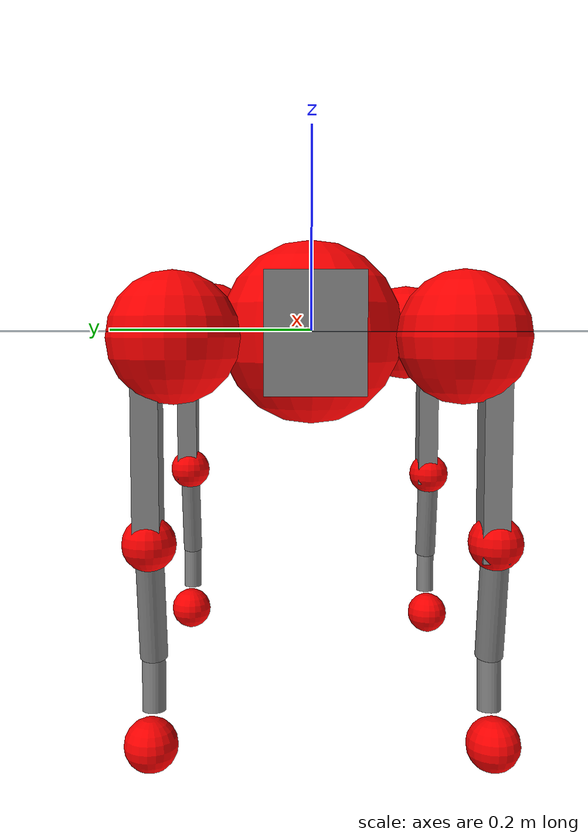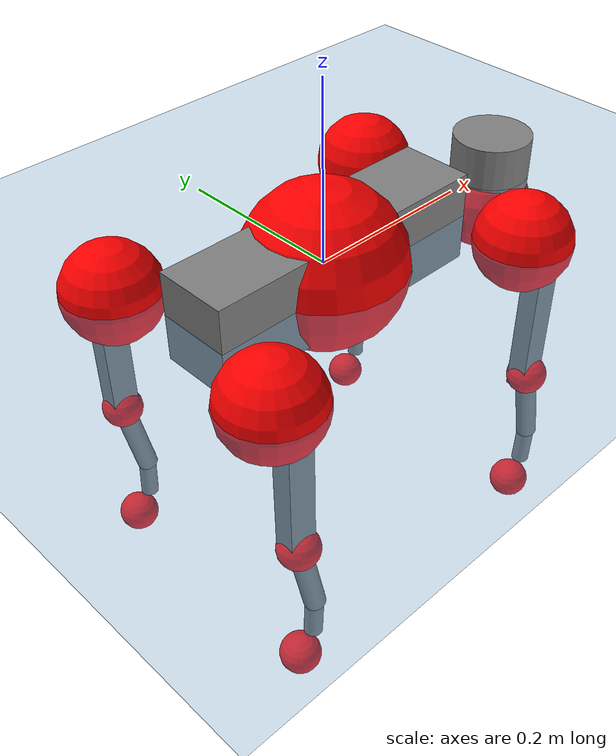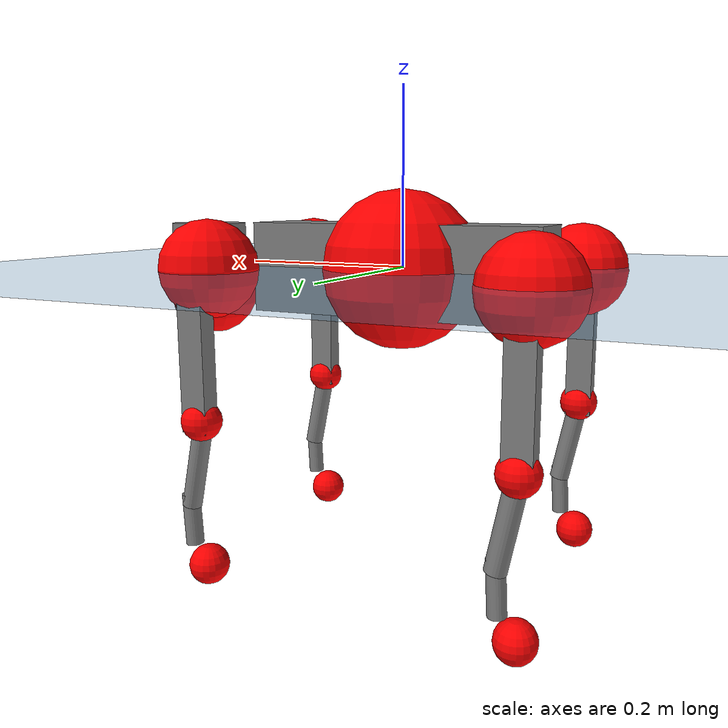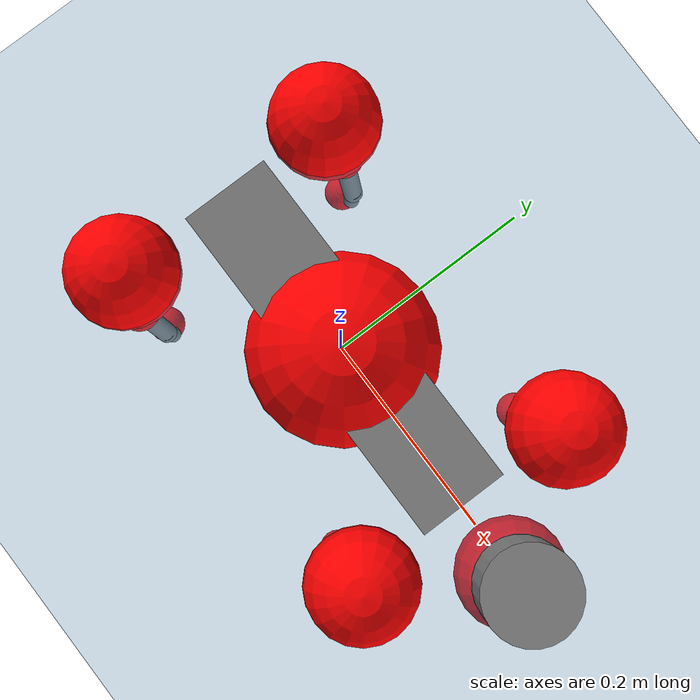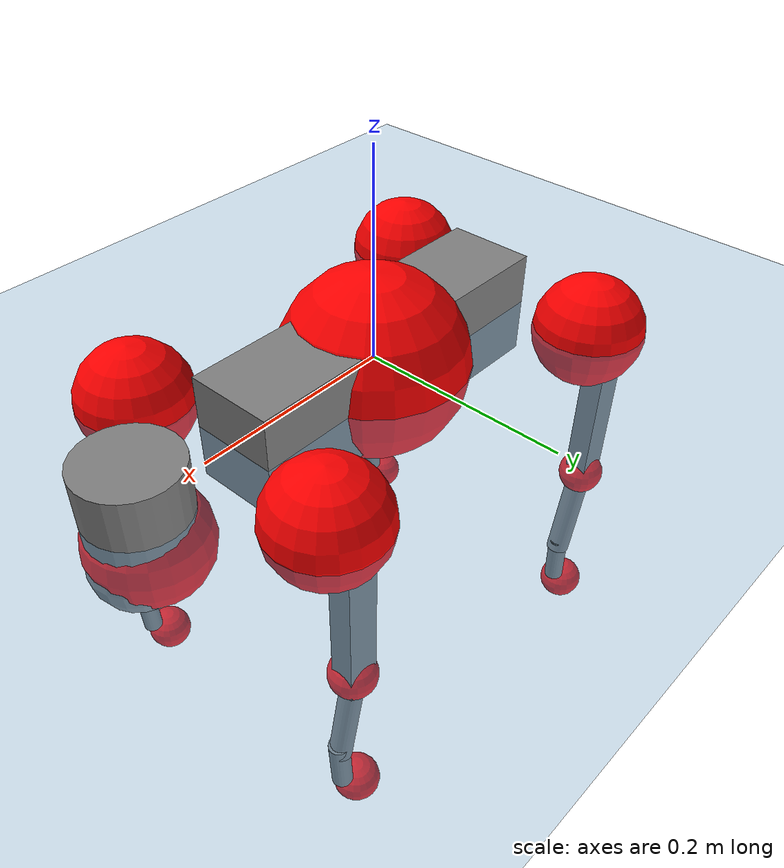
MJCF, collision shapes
<mujoco model="go2">
  <compiler angle="radian" assetdir="assets" balanceinertia="true" inertiafromgeom="false"/>

  <option timestep="0.005" density="1.2" viscosity="2e-05"/>

  <size nkey="1"/>

  <visual>
    <quality shadowsize="8192"/>
    <map shadowclip="0.5"/>
  </visual>

  <default>
    <default class="/">
      <geom contype="0" conaffinity="0" group="1" solref="-1000 -80"/>
      <site size="0.01 0.005 0.005" group="5"/>
      <general forcelimited="true" biastype="affine" gainprm="20" biasprm="0 -20 -0.5"/>
      <default class="go2">
        <joint armature="0.01" damping="0.01" frictionloss="0.2"/>
        <geom condim="1" margin="0.001"/>
        <default class="visual">
          <geom type="mesh" group="2"/>
        </default>
        <default class="collision">
          <geom group="3"/>
          <default class="foot">
            <geom size="0.022 0 0" condim="6" priority="1" friction="0.8 0.02 0.01" solimp="0.015 1 0.022"/>
          </default>
        </default>
        <default class="reward_collision_sphere">
          <geom group="5" rgba="1 0 0 1"/>
        </default>
      </default>
    </default>
  </default>

  <asset>
    <texture type="skybox" colorspace="auto" name="//unnamed_texture_0" builtin="gradient" rgb1="0.95 0.95 0.95" rgb2="0.95 0.95 0.95" width="100" height="600"/>
    <texture type="2d" colorspace="auto" name="texplane" builtin="checker" rgb1="0.345 0.575 0.748" rgb2="0.345 0.575 0.748" markrgb="1 1 1" width="512" height="512"/>
    <material name="MatPlane" class="/" texture="texplane" texuniform="true" texrepeat="2 2" specular="0.9"/>
    <material name="metal" class="/" rgba="0.9 0.95 0.95 1"/>
    <material name="black" class="/" rgba="0 0 0 1"/>
    <material name="white" class="/"/>
    <material name="gray" class="/" rgba="0.671705 0.692426 0.77427 1"/>
    <mesh name="base_0" class="/" file="base_0.obj"/>
    <mesh name="base_1" class="/" file="base_1.obj"/>
    <mesh name="base_2" class="/" file="base_2.obj"/>
    <mesh name="base_3" class="/" file="base_3.obj"/>
    <mesh name="base_4" class="/" file="base_4.obj"/>
    <mesh name="hip_0" class="/" file="hip_0.obj"/>
    <mesh name="hip_1" class="/" file="hip_1.obj"/>
    <mesh name="thigh_0" class="/" file="thigh_0.obj"/>
    <mesh name="thigh_1" class="/" file="thigh_1.obj"/>
    <mesh name="thigh_mirror_0" class="/" file="thigh_mirror_0.obj"/>
    <mesh name="thigh_mirror_1" class="/" file="thigh_mirror_1.obj"/>
    <mesh name="calf_0" class="/" file="calf_0.obj"/>
    <mesh name="calf_1" class="/" file="calf_1.obj"/>
    <mesh name="calf_mirror_0" class="/" file="calf_mirror_0.obj"/>
    <mesh name="calf_mirror_1" class="/" file="calf_mirror_1.obj"/>
    <mesh name="foot" class="/" file="foot.obj"/>
  </asset>

  <worldbody>
    <geom name="floor" class="/" size="100 100 0.125" type="plane" group="0" material="MatPlane"/>
    <light name="toplight_shadow" class="/" pos="0 0 5" dir="0.0990148 0.0990148 -0.990148" type="directional" ambient="0.04 0.04 0.04" diffuse="0.55 0.55 0.55" specular="0.12 0.12 0.12"/>
    <light name="toplight_fill" class="/" pos="0 0 5" dir="0.0990148 0.0990148 -0.990148" type="directional" castshadow="false" ambient="0.04 0.04 0.04" diffuse="0.3 0.3 0.3" specular="0.08 0.08 0.08"/>
    <body name="trunk" childclass="go2" pos="0.00152631 0.000847432 -0.00219755" quat="0.999999 -0.000559994 -0.000842428 0.000377659">
      <inertial pos="0.017669 0.00220227 -0.0033643" quat="0.00148162 0.714559 -0.00341103 0.699565" mass="5.14681" diaginertia="0.0774354 0.0949131 0.00784016"/>
      <joint name="//unnamed_joint_0" type="free" armature="0" damping="0" frictionloss="0"/>
      <geom name="//unnamed_geom_1" class="visual" material="black" mesh="base_0"/>
      <geom name="//unnamed_geom_2" class="visual" material="black" mesh="base_1"/>
      <geom name="//unnamed_geom_3" class="visual" material="black" mesh="base_2"/>
      <geom name="//unnamed_geom_4" class="visual" material="white" mesh="base_3"/>
      <geom name="//unnamed_geom_5" class="visual" material="gray" mesh="base_4"/>
      <geom name="trunk_1" class="collision" size="0.170223 0.0423068 0.0515826" type="box"/>
      <geom name="trunk_2" class="collision" size="0.0452479 0.0407231" pos="0.266078 0 0.00791021" type="cylinder"/>
      <geom name="trunk_3" class="collision" size="0.042533" pos="0.273547 0 -0.0474613"/>
      <geom name="//unnamed_geom_9" class="reward_collision_sphere" size="0.0904958"/>
      <geom name="//unnamed_geom_10" class="reward_collision_sphere" size="0.0542975" pos="0.26141 0 -0.0355959"/>
      <site name="imu" pos="-0.0190436 0.0126963 0.0450661" size="0.00904958"/>
      <camera name="track" pos="0 -1.98049 0" quat="0.707107 0.707107 0 0" mode="trackcom"/>
      <camera name="ego_camera" pos="0.291285 0 0.0355959" quat="-0.5 -0.5 0.5 0.5"/>
      <body name="FL_hip" pos="0.17928 0.0468999 0.00304075" quat="1 -0.000250801 0.000760738 0.000449076">
        <inertial pos="-0.00496505 -0.000633274 0.0010156" quat="0.493036 0.50109 0.504734 0.501067" mass="0.487404" diaginertia="0.000636902 0.000583164 0.00014903"/>
        <joint name="FL_hip_joint" pos="0 0 0" axis="0.999978 0.00383539 0.00544946" range="-1.01389 1.07141" armature="0.00905878" damping="0.0203955" frictionloss="0.179865"/>
        <geom name="//unnamed_geom_11" class="visual" material="metal" mesh="hip_0"/>
        <geom name="//unnamed_geom_12" class="visual" material="gray" mesh="hip_1"/>
        <geom name="//unnamed_geom_13" class="collision" size="0.0416281 0.0180992" pos="0 0.0792197 0" quat="0.707107 0.707107 0 0" type="cylinder"/>
        <geom name="//unnamed_geom_14" class="reward_collision_sphere" size="0.0542975" pos="0 0.0693173 0"/>
        <body name="FL_thigh" pos="0.00110111 0.095241 0.00311818" quat="0.999999 -9.12511e-05 -0.000137065 -0.00121142">
          <inertial pos="-0.00105542 -0.0246921 -0.0280485" quat="0.829797 0.0848857 -0.0206316 0.551185" mass="0.831029" diaginertia="0.00418838 0.00530651 0.000266863"/>
          <joint name="FL_thigh_joint" pos="0 0 0" axis="6.04537e-05 1 0.000202188" range="-1.52328 3.49541" armature="0.00830319" damping="0.0149485" frictionloss="0.169495"/>
          <geom name="//unnamed_geom_15" class="visual" material="metal" mesh="thigh_0"/>
          <geom name="//unnamed_geom_16" class="visual" material="gray" mesh="thigh_1"/>
          <geom name="//unnamed_geom_17" class="collision" size="0.096378 0.0110857 0.0153843" pos="0 0 -0.0842437" quat="0.707107 0 0.707107 0" type="box"/>
          <body name="FL_calf" pos="-0.000649926 -0.00232307 -0.169396" quat="0.999999 -0.000549161 0.000910349 -0.000882589">
            <inertial pos="0.00324061 -0.000876624 -0.108491" quat="0.715273 0.00205873 0.000196801 0.698842" mass="0.17856" diaginertia="0.00103869 0.00146633 1.6888e-05"/>
            <joint name="FL_calf_joint" pos="0 0 0" axis="-0.0119324 0.999807 -0.0156205" stiffness="0.0137542" range="-2.76722 -0.854115" armature="0.0100227" damping="0" frictionloss="0.203404"/>
            <geom name="//unnamed_geom_18" class="visual" material="gray" mesh="calf_0"/>
            <geom name="//unnamed_geom_19" class="visual" material="black" mesh="calf_1"/>
            <geom name="FL_calf0" class="collision" size="0.0108595 0.0542975" pos="0.00746886 0 -0.0474613" quat="0.994493 0 -0.104807 0" type="cylinder"/>
            <geom name="//unnamed_geom_21" class="collision" size="0.00995454 0.0294111" pos="0.0186721 0 -0.117071" quat="0.999688 0 0.0249974 0" type="cylinder"/>
            <geom name="//unnamed_geom_22" class="visual" pos="0 0 -0.168487" quat="1 0 0 0" material="black" mesh="foot"/>
            <geom name="FL_foot" class="foot" size="0.0173457" pos="-0.00186721 0 -0.168487"/>
            <geom name="//unnamed_geom_24" class="reward_collision_sphere" size="0.022624"/>
            <geom name="//unnamed_geom_25" class="reward_collision_sphere" size="0.022624" pos="-0.00186721 0 -0.168487"/>
            <site name="FL_foot" class="foot" pos="-0.00186721 0 -0.168487" size="0.00904958"/>
          </body>
        </body>
      </body>
      <body name="FR_hip" pos="0.180363 -0.0455929 -0.00122068" quat="0.999999 0.00122718 0.000264872 -0.000130356">
        <inertial pos="-0.00230093 -0.00434562 -9.97768e-05" quat="0.488985 0.514859 0.499059 0.496743" mass="0.498567" diaginertia="0.00058538 0.00054822 0.000138805"/>
        <joint name="FR_hip_joint" pos="0 0 0" axis="0.999891 -0.00201789 -0.0146275" range="-1.02632 1.04668" armature="0.00931902" damping="0.00563325" frictionloss="0.157648"/>
        <geom name="//unnamed_geom_26" class="visual" pos="0 1.73557e-09 7.44422e-08" quat="4.63268e-05 1 0 0" material="metal" mesh="hip_0"/>
        <geom name="//unnamed_geom_27" class="visual" pos="0 2.81357e-09 -1.84124e-07" quat="4.63268e-05 1 0 0" material="gray" mesh="hip_1"/>
        <geom name="//unnamed_geom_28" class="collision" size="0.0416281 0.0180992" pos="0 -0.0792197 0" quat="0.707107 0.707107 0 0" type="cylinder"/>
        <geom name="//unnamed_geom_29" class="reward_collision_sphere" size="0.0542975" pos="0 -0.0693173 0"/>
        <body name="FR_thigh" pos="0.000292017 -0.0960624 0.00210896" quat="1 5.62714e-05 -0.000421497 0.000106003">
          <inertial pos="-0.000601279 0.0194184 -0.0248077" quat="0.540708 -0.0177349 0.0899244 0.836202" mass="0.858197" diaginertia="0.00415304 0.00533761 0.000273209"/>
          <joint name="FR_thigh_joint" pos="0 0 0" axis="-0.00376632 -0.999993 -0.000337584" range="-3.47111 1.62295" armature="0.00911076" damping="0.00811471" frictionloss="0.199513"/>
          <geom name="//unnamed_geom_30" class="visual" material="metal" mesh="thigh_mirror_0"/>
          <geom name="//unnamed_geom_31" class="visual" material="gray" mesh="thigh_mirror_1"/>
          <geom name="//unnamed_geom_32" class="collision" size="0.096378 0.0110857 0.0153843" pos="0 0 -0.0842437" quat="0.707107 0 0.707107 0" type="box"/>
          <body name="FR_calf" pos="0.00128086 -0.00291589 -0.169727" quat="1 -5.55014e-05 6.36e-05 1.73761e-05">
            <inertial pos="0.00565596 -6.88589e-05 -0.111633" quat="0.708052 0.00491476 0.00494369 0.706126" mass="0.180126" diaginertia="0.00106237 0.00139408 1.59067e-05"/>
            <joint name="FR_calf_joint" pos="0 0 0" axis="0.00912599 -0.999942 0.00578663" range="0.821291 2.77764" armature="0.0085742" damping="0.0253522" frictionloss="0.165388"/>
            <geom name="//unnamed_geom_33" class="visual" material="gray" mesh="calf_mirror_0"/>
            <geom name="//unnamed_geom_34" class="visual" material="black" mesh="calf_mirror_1"/>
            <geom name="FR_calf0" class="collision" size="0.0117645 0.0542975" pos="0.00933607 0 -0.0474613" quat="0.995004 0 -0.0998334 0" type="cylinder"/>
            <geom name="//unnamed_geom_36" class="collision" size="0.00995454 0.0294111" pos="0.0186721 0 -0.117071" quat="0.999688 0 0.0249974 0" type="cylinder"/>
            <geom name="//unnamed_geom_37" class="visual" pos="0 0 -0.168487" quat="1 0 0 0" material="black" mesh="foot"/>
            <geom name="FR_foot" class="foot" size="0.020532" pos="-0.00186721 0 -0.168487"/>
            <geom name="//unnamed_geom_39" class="reward_collision_sphere" size="0.022624"/>
            <geom name="//unnamed_geom_40" class="reward_collision_sphere" size="0.022624" pos="-0.00186721 0 -0.168487"/>
            <site name="FR_foot" class="foot" pos="-0.00186721 0 -0.168487" size="0.00904958"/>
          </body>
        </body>
      </body>
      <body name="RL_hip" pos="-0.179572 0.0453087 -0.00309416" quat="1 -0.000144525 -0.000173302 -0.000144634">
        <inertial pos="0.00633205 0.00409869 -0.00271684" quat="0.509933 0.493471 0.496005 0.500434" mass="0.513491" diaginertia="0.000616841 0.000564682 0.000152324"/>
        <joint name="RL_hip_joint" pos="0 0 0" axis="-0.999856 0.00101148 0.0169576" stiffness="0.0127693" range="-1.02852 0.991223" armature="0.00794246" damping="0" frictionloss="0.202698"/>
        <geom name="//unnamed_geom_41" class="visual" pos="-1.24215e-09 0 -2.43491e-07" quat="4.63268e-05 0 1 0" material="metal" mesh="hip_0"/>
        <geom name="//unnamed_geom_42" class="visual" pos="-2.01368e-09 0 -2.15942e-07" quat="4.63268e-05 0 1 0" material="gray" mesh="hip_1"/>
        <geom name="//unnamed_geom_43" class="collision" size="0.0416281 0.0180992" pos="0 0.0792197 0" quat="0.707107 0.707107 0 0" type="cylinder"/>
        <geom name="//unnamed_geom_44" class="reward_collision_sphere" size="0.0542975" pos="0 0.0693173 0"/>
        <body name="RL_thigh" pos="0.000542043 0.0913978 0.00186576" quat="1 -0.00043217 -0.00011076 -0.000154168">
          <inertial pos="-0.00333408 -0.021959 -0.0265034" quat="0.827486 0.0801508 -0.0184415 0.55543" mass="0.878668" diaginertia="0.00422009 0.00553626 0.000283097"/>
          <joint name="RL_thigh_joint" pos="0 0 0" axis="-0.0115826 0.999868 -0.0113926" stiffness="0.0119019" range="-0.534957 4.53736" armature="0.010253" damping="0" frictionloss="0.182913"/>
          <geom name="//unnamed_geom_45" class="visual" material="metal" mesh="thigh_0"/>
          <geom name="//unnamed_geom_46" class="visual" material="gray" mesh="thigh_1"/>
          <geom name="//unnamed_geom_47" class="collision" size="0.096378 0.0110857 0.0153843" pos="0 0 -0.0842437" quat="0.707107 0 0.707107 0" type="box"/>
          <body name="RL_calf" pos="0.000369114 -0.000504388 -0.170597" quat="1 -3.70769e-06 -1.63345e-05 1.56939e-05">
            <inertial pos="0.00453806 0.00124159 -0.112396" quat="0.71574 0.00849378 -0.0115984 0.698219" mass="0.181249" diaginertia="0.00103729 0.00140107 1.63356e-05"/>
            <joint name="RL_calf_joint" pos="0 0 0" axis="-0.0022211 0.99999 0.00384479" range="-2.7182 -0.794598" armature="0.0101264" damping="0" frictionloss="0.197863"/>
            <geom name="//unnamed_geom_48" class="visual" material="gray" mesh="calf_0"/>
            <geom name="//unnamed_geom_49" class="visual" material="black" mesh="calf_1"/>
            <geom name="RL_calf0" class="collision" size="0.0117645 0.0542975" pos="0.00933607 0 -0.0474613" quat="0.995004 0 -0.0998334 0" type="cylinder"/>
            <geom name="//unnamed_geom_51" class="collision" size="0.00995454 0.0294111" pos="0.0186721 0 -0.117071" quat="0.999688 0 0.0249974 0" type="cylinder"/>
            <geom name="//unnamed_geom_52" class="visual" pos="0 0 -0.168487" quat="1 0 0 0" material="black" mesh="foot"/>
            <geom name="RL_foot" class="foot" size="0.0162783" pos="-0.00186721 0 -0.168487"/>
            <geom name="//unnamed_geom_54" class="reward_collision_sphere" size="0.022624"/>
            <geom name="//unnamed_geom_55" class="reward_collision_sphere" size="0.022624" pos="-0.00186721 0 -0.168487"/>
            <site name="RL_foot" class="foot" pos="-0.00186721 0 -0.168487" size="0.00904958"/>
          </body>
        </body>
      </body>
      <body name="RR_hip" pos="-0.179083 -0.0491051 -0.00294353" quat="1 -0.000403085 -0.000603506 0.00013616">
        <inertial pos="0.00688878 0.0010684 -0.00219697" quat="0.509361 0.491064 0.501247 0.498156" mass="0.502335" diaginertia="0.000623429 0.000567793 0.000150316"/>
        <joint name="RR_hip_joint" pos="0 0 0" axis="-0.99996 0.00881501 -0.00125252" stiffness="0.0100842" range="-1.01577 1.03298" armature="0.00798171" damping="0.00611085" frictionloss="0.175556"/>
        <geom name="//unnamed_geom_56" class="visual" pos="1.24411e-09 1.73557e-09 -3.17933e-07" quat="2.14617e-09 4.63268e-05 4.63268e-05 -1" material="metal" mesh="hip_0"/>
        <geom name="//unnamed_geom_57" class="visual" pos="2.00883e-09 2.81357e-09 -3.18174e-08" quat="2.14617e-09 4.63268e-05 4.63268e-05 -1" material="gray" mesh="hip_1"/>
        <geom name="//unnamed_geom_58" class="collision" size="0.0416281 0.0180992" pos="0 -0.0792197 0" quat="0.707107 0.707107 0 0" type="cylinder"/>
        <geom name="//unnamed_geom_59" class="reward_collision_sphere" size="0.0542975" pos="0 -0.0693173 0"/>
        <body name="RR_thigh" pos="0.000475548 -0.0951554 -0.00101017" quat="1 5.75753e-05 0.000153078 -0.000117426">
          <inertial pos="-0.00231401 0.0225836 -0.0258336" quat="0.5507 -0.019935 0.0871985 0.829897" mass="0.827055" diaginertia="0.0042646 0.0057613 0.000272733"/>
          <joint name="RR_thigh_joint" pos="0 0 0" axis="-0.0037791 -0.999992 -0.00139647" stiffness="0.00778979" range="-4.54526 0.574327" armature="0.00952419" damping="0.0112852" frictionloss="0.176075"/>
          <geom name="//unnamed_geom_60" class="visual" material="metal" mesh="thigh_mirror_0"/>
          <geom name="//unnamed_geom_61" class="visual" material="gray" mesh="thigh_mirror_1"/>
          <geom name="//unnamed_geom_62" class="collision" size="0.096378 0.0110857 0.0153843" pos="0 0 -0.0842437" quat="0.707107 0 0.707107 0" type="box"/>
          <body name="RR_calf" pos="0.000927418 -0.00235765 -0.16682" quat="1 -0.000409814 -0.000172938 5.47833e-05">
            <inertial pos="0.00286726 -0.000382008 -0.112474" quat="0.709121 -0.0127569 0.00677086 0.704939" mass="0.181162" diaginertia="0.00107888 0.00139856 1.70443e-05"/>
            <joint name="RR_calf_joint" pos="0 0 0" axis="-0.0147011 -0.999866 -0.00716838" stiffness="0.00259437" range="0.822471 2.71343" armature="0.00884139" damping="0.0226739" frictionloss="0.177028"/>
            <geom name="//unnamed_geom_63" class="visual" material="gray" mesh="calf_mirror_0"/>
            <geom name="//unnamed_geom_64" class="visual" material="black" mesh="calf_mirror_1"/>
            <geom name="RR_calf0" class="collision" size="0.0117645 0.0542975" pos="0.00933607 0 -0.0474613" quat="0.995004 0 -0.0998334 0" type="cylinder"/>
            <geom name="//unnamed_geom_66" class="collision" size="0.00995454 0.0294111" pos="0.0186721 0 -0.117071" quat="0.999688 0 0.0249974 0" type="cylinder"/>
            <geom name="//unnamed_geom_67" class="visual" pos="0 0 -0.168487" quat="1 0 0 0" material="black" mesh="foot"/>
            <geom name="RR_foot" class="foot" size="0.0191864" pos="-0.00186721 0 -0.168487"/>
            <geom name="//unnamed_geom_69" class="reward_collision_sphere" size="0.022624"/>
            <geom name="//unnamed_geom_70" class="reward_collision_sphere" size="0.022624" pos="-0.00186721 0 -0.168487"/>
            <site name="RR_foot" class="foot" pos="-0.00186721 0 -0.168487" size="0.00904958"/>
          </body>
        </body>
      </body>
    </body>
  </worldbody>

  <contact>
    <pair class="/" geom1="floor" geom2="FL_foot" name="//unnamed_contact_0"/>
    <pair class="/" geom1="floor" geom2="FR_foot" name="//unnamed_contact_1"/>
    <pair class="/" geom1="floor" geom2="RL_foot" name="//unnamed_contact_2"/>
    <pair class="/" geom1="floor" geom2="RR_foot" name="//unnamed_contact_3"/>
  </contact>

  <actuator>
    <general name="FL_hip" class="/" joint="FL_hip_joint" forcerange="-21.634 21.634" gainprm="19.3954" biasprm="0 -19.3954 -0.422362"/>
    <general name="FL_thigh" class="/" joint="FL_thigh_joint" forcerange="-19.5168 19.5168" gainprm="19.3954" biasprm="0 -19.3954 -0.422362"/>
    <general name="FL_calf" class="/" joint="FL_calf_joint" forcerange="-42.461 42.461" gainprm="19.3954" biasprm="0 -19.3954 -0.422362"/>
    <general name="FR_hip" class="/" joint="FR_hip_joint" forcerange="-21.5189 21.5189" gainprm="19.3954" biasprm="0 -19.3954 -0.422362"/>
    <general name="FR_thigh" class="/" joint="FR_thigh_joint" forcerange="-23.3791 23.3791" gainprm="19.3954" biasprm="0 -19.3954 -0.422362"/>
    <general name="FR_calf" class="/" joint="FR_calf_joint" forcerange="-40.3384 40.3384" gainprm="19.3954" biasprm="0 -19.3954 -0.422362"/>
    <general name="RL_hip" class="/" joint="RL_hip_joint" forcerange="-22.9451 22.9451" gainprm="19.3954" biasprm="0 -19.3954 -0.422362"/>
    <general name="RL_thigh" class="/" joint="RL_thigh_joint" forcerange="-19.7207 19.7207" gainprm="19.3954" biasprm="0 -19.3954 -0.422362"/>
    <general name="RL_calf" class="/" joint="RL_calf_joint" forcerange="-37.8531 37.8531" gainprm="19.3954" biasprm="0 -19.3954 -0.422362"/>
    <general name="RR_hip" class="/" joint="RR_hip_joint" forcerange="-19.2141 19.2141" gainprm="19.3954" biasprm="0 -19.3954 -0.422362"/>
    <general name="RR_thigh" class="/" joint="RR_thigh_joint" forcerange="-23.187 23.187" gainprm="19.3954" biasprm="0 -19.3954 -0.422362"/>
    <general name="RR_calf" class="/" joint="RR_calf_joint" forcerange="-40.1512 40.1512" gainprm="19.3954" biasprm="0 -19.3954 -0.422362"/>
  </actuator>

  <sensor>
    <gyro site="imu" name="imu_angular_velocity"/>
    <velocimeter site="imu" name="imu_linear_velocity"/>
    <framelinvel objtype="site" objname="FL_foot" name="FL_foot_global_linear_velocity"/>
    <framelinvel objtype="site" objname="FR_foot" name="FR_foot_global_linear_velocity"/>
    <framelinvel objtype="site" objname="RL_foot" name="RL_foot_global_linear_velocity"/>
    <framelinvel objtype="site" objname="RR_foot" name="RR_foot_global_linear_velocity"/>
  </sensor>

  <keyframe>
    <key name="home" qpos="0 0 0.325 1 0 0 0 0.1 0.8 -1.5 -0.1 -0.8 1.5 -0.1 0.8 -1.5 0.1 -0.8 1.5"/>
  </keyframe>
</mujoco>
